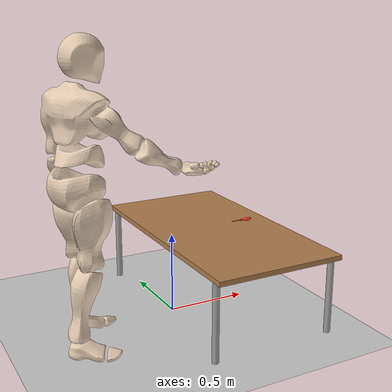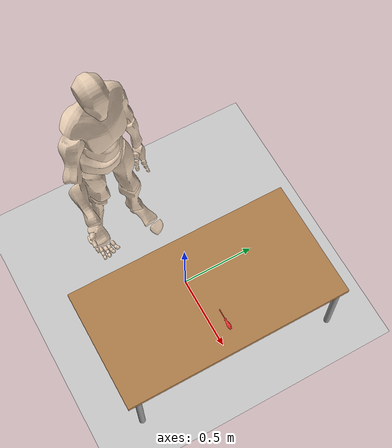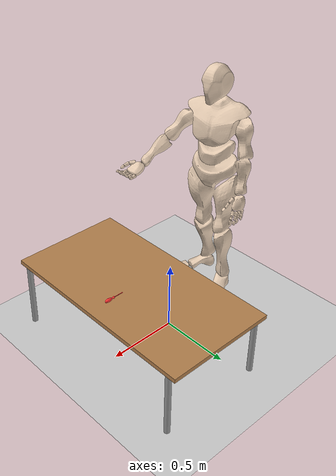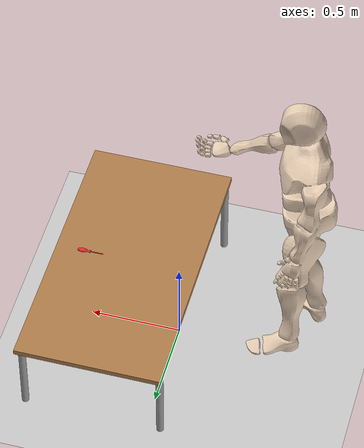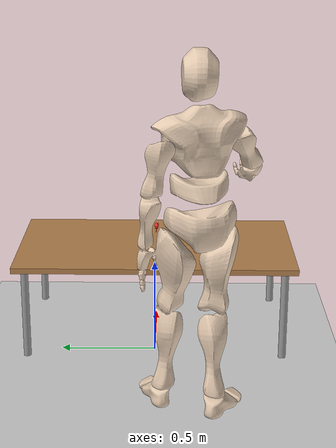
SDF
<sdf version="1.4">
 <world name="default">
  <include><uri>model://sun</uri></include>
  <include><uri>model://ground_plane</uri></include>
  <include><name>table</name><uri>model://challenge_table</uri><pose>0.3 0 -0.015 0 0 1.57</pose></include>
  <include>
   <name>screwdriver</name>
   <uri>model://challenge_screwdriver</uri>
   <pose>0.5 0 0.52 0 0 0</pose>
  </include>
  <include><name>human</name><uri>model://challenge_human</uri><pose>-0.5 0.0 0.0 0 0 1.57</pose></include>
 </world>
</sdf>

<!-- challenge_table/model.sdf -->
<sdf version="1.4">
  <model name="challenge_table">
    <static>true</static>
    <link name="link">
      <collision name="surface">
        <pose>0 0 0.5 0 0 0</pose>
        <geometry>
          <box>
            <size>1.5 0.8 0.03</size>
          </box>
        </geometry>
        <surface>
          <friction>
            <ode>
              <mu>0.6</mu>
              <mu2>0.6</mu2>
            </ode>
          </friction>
        </surface>
      </collision>
      <visual name="visual1">
        <pose>0 0 0.5 0 0 0</pose>
        <geometry>
          <box>
            <size>1.5 0.8 0.03</size>
          </box>
        </geometry>
        <material>
          <script>
            <uri>file://media/materials/scripts/gazebo.material</uri>
            <name>Gazebo/Wood</name>
          </script>
        </material>
      </visual>
      <collision name="front_left_leg">
        <pose>0.68 0.38 0.25 0 0 0</pose>
        <geometry>
          <cylinder>
            <radius>0.02</radius>
            <length>0.5</length>
          </cylinder>
        </geometry>
      </collision>
      <visual name="front_left_leg">
        <pose>0.68 0.38 0.25 0 0 0</pose>
        <geometry>
          <cylinder>
            <radius>0.02</radius>
            <length>0.5</length>
          </cylinder>
        </geometry>
        <material>
          <script>
            <uri>file://media/materials/scripts/gazebo.material</uri>
            <name>Gazebo/Grey</name>
          </script>
        </material>
      </visual>
      <collision name="front_right_leg">
        <pose>0.68 -0.38 0.25 0 0 0</pose>
        <geometry>
          <cylinder>
            <radius>0.02</radius>
            <length>0.5</length>
          </cylinder>
        </geometry>
      </collision>
      <visual name="front_right_leg">
        <pose>0.68 -0.38 0.25 0 0 0</pose>
        <geometry>
          <cylinder>
            <radius>0.02</radius>
            <length>0.5</length>
          </cylinder>
        </geometry>
        <material>
          <script>
            <uri>file://media/materials/scripts/gazebo.material</uri>
            <name>Gazebo/Grey</name>
          </script>
        </material>
      </visual>
      <collision name="back_right_leg">
        <pose>-0.68 -0.38 0.25 0 0 0</pose>
        <geometry>
          <cylinder>
            <radius>0.02</radius>
            <length>0.5</length>
          </cylinder>
        </geometry>
      </collision>
      <visual name="back_right_leg">
        <pose>-0.68 -0.38 0.25 0 0 0</pose>
        <geometry>
          <cylinder>
            <radius>0.02</radius>
            <length>0.5</length>
          </cylinder>
        </geometry>
        <material>
          <script>
            <uri>file://media/materials/scripts/gazebo.material</uri>
            <name>Gazebo/Grey</name>
          </script>
        </material>
      </visual>
      <collision name="back_left_leg">
        <pose>-0.68 0.38 0.25 0 0 0</pose>
        <geometry>
          <cylinder>
            <radius>0.02</radius>
            <length>0.5</length>
          </cylinder>
        </geometry>
      </collision>
      <visual name="back_left_leg">
        <pose>-0.68 0.38 0.25 0 0 0</pose>
        <geometry>
          <cylinder>
            <radius>0.02</radius>
            <length>0.5</length>
          </cylinder>
        </geometry>
        <material>
          <script>
            <uri>file://media/materials/scripts/gazebo.material</uri>
            <name>Gazebo/Grey</name>
          </script>
        </material>
      </visual>
    </link>
  </model>
</sdf>

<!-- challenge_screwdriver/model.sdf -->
<sdf version="1.4">
  <model name="challenge_screwdriver">
    <static>false</static>
    <link name="link">
      <inertial>
        <mass>0.05</mass>
        <inertia>
          <ixx>0.000052083</ixx>
          <ixy>0.0</ixy>
          <ixz>0.0</ixz>
          <iyy>0.000052083</iyy>
          <iyz>0.0</iyz>
          <izz>0.000020833</izz>
        </inertia>
      </inertial>

      <!-- Collision -->
      <collision name="collision">
        <geometry>
          <mesh>
            <uri>model://challenge_screwdriver/mesh/challenge_screwdriver.stl</uri>
            <scale>0.001 0.001 0.001</scale>
          </mesh>
        </geometry>
        <surface>
          <friction>
            <ode>
              <mu>30.0</mu>
              <mu2>30.0</mu2>
              <!-- fdir1 should typically be a unit vector; (0 0 0) is not valid -->
              <fdir1>1 0 0</fdir1>
            </ode>
          </friction>
          <contact>
            <ode>
              <kp>1000000.0</kp>
              <kd>100.0</kd>
              <min_depth>0.0025</min_depth>
              <max_vel>1.0</max_vel>
            </ode>
          </contact>
        </surface>
      </collision>

      <!-- Visual -->
      <visual name="visual">
        <geometry>
          <mesh>
            <uri>model://challenge_screwdriver/mesh/challenge_screwdriver.stl</uri>
            <scale>0.001 0.001 0.001</scale>
          </mesh>
        </geometry>
        <material>
          <ambient>0.8 0.1 0.1 1</ambient>   <!-- Dark red ambient -->
          <diffuse>1.0 0.2 0.2 1</diffuse>   <!-- Bright red diffuse -->
          <specular>0.5 0.5 0.5 1</specular> <!-- Some shininess -->
          <emissive>0 0 0 1</emissive>       <!-- No emission -->
        </material>
      </visual>

      <!-- Other physics properties -->
      <velocity_decay>
        <linear>0.0</linear>
        <angular>0.0</angular>
      </velocity_decay>
      <self_collide>false</self_collide>
      <kinematic>false</kinematic>
      <gravity>true</gravity>

    </link>
  </model>
</sdf>

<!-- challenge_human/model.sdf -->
<sdf version="1.4">
  <model name="challenge_human">
    <static>true</static>

    <link name="link">
      <inertial>
        <mass>70.0</mass>
        <inertia>
          <ixx>1.0</ixx>
          <ixy>0.0</ixy>
          <ixz>0.0</ixz>
          <iyy>1.0</iyy>
          <iyz>0.0</iyz>
          <izz>1.0</izz>
        </inertia>
      </inertial>

      <collision name="collision">
        <geometry>
          <mesh>
            <uri>model://challenge_human/mesh/human_model.stl</uri>
            <scale>1 1 1</scale>
          </mesh>
        </geometry>
      </collision>

      <visual name="visual">
        <geometry>
          <mesh>
            <uri>model://challenge_human/mesh/human_model.stl</uri>
            <scale>1 1 1</scale>
          </mesh>
        </geometry>
        <material>
          <ambient>0.8 0.7 0.6 1</ambient>
          <diffuse>0.9 0.8 0.7 1</diffuse>
          <specular>0.2 0.2 0.2 1</specular>
          <emissive>0 0 0 1</emissive>
        </material>
      </visual>
    </link>
  </model>
</sdf>
